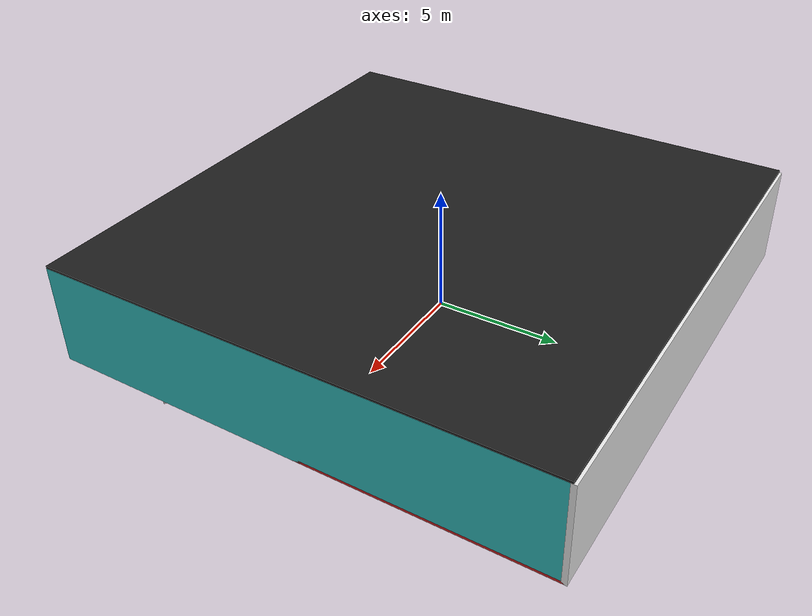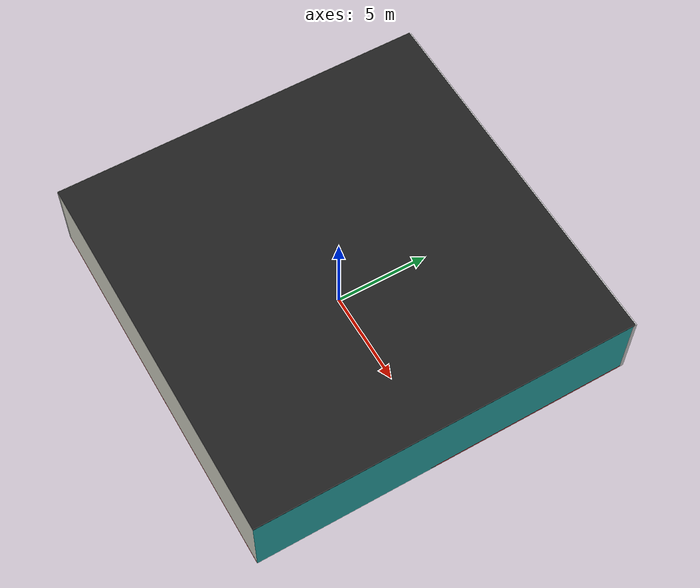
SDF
<sdf version="1.4">
 <world name="default">
  <physics type="ode">
   <max_step_size>0.001</max_step_size>
   <real_time_factor>1</real_time_factor>
   <real_time_update_rate>1000</real_time_update_rate>
   <gravity>0 0 -9.8</gravity>
  </physics>
  <scene><ambient>0.4 0.4 0.4 1</ambient><background>0.7 0.7 0.7 1</background><shadows>1</shadows></scene>
  <model name="Surrounding">
   <static>1</static>
   <link name="Ceiling">
    <collision name="Ceiling_Collision"><geometry><box><size>20 20 0.1</size></box></geometry></collision>
    <visual name="Ceiling_Visual">
     <geometry><box><size>20 20 0.1</size></box></geometry>
     <material>
      <script><uri>file://media/materials/scripts/gazebo.material</uri><name>Gazebo/FlatBlack</name></script>
     </material>
    </visual>
    <pose>0 0 4.05 0 0 0</pose>
   </link>
   <link name="Wall_South">
    <collision name="Wall_South_Collision">
     <geometry><box><size>20 0 4</size></box></geometry>
     <pose>0 0 2 0 -0 0</pose>
    </collision>
    <visual name="Wall_South_Visual">
     <pose>0 0 2 0 -0 0</pose>
     <geometry><box><size>20 0 4</size></box></geometry>
     <material>
      <script><uri>file://media/materials/scripts/gazebo.material</uri><name>Gazebo/PaintedWall</name></script>
     </material>
    </visual>
    <velocity_decay><linear>0</linear><angular>0</angular></velocity_decay>
    <pose>0 -10 0 0 -0 0</pose>
   </link>
   <link name="Wall_East">
    <collision name="Wall_21_Collision">
     <geometry><box><size>20 0 4</size></box></geometry>
     <pose>0 0 2 0 -0 0</pose>
    </collision>
    <visual name="Wall_21_Visual">
     <pose>0 0 2 0 -0 0</pose>
     <geometry><box><size>20 0 4</size></box></geometry>
     <material>
      <script><uri>file://media/materials/scripts/gazebo.material</uri><name>Gazebo/TurquoiseGlow</name></script>
     </material>
    </visual>
    <velocity_decay><linear>0</linear><angular>0</angular></velocity_decay>
    <pose>10 0 0 0 -0 1.5708</pose>
   </link>
   <link name="Wall_North">
    <collision name="Wall_22_Collision">
     <geometry><box><size>20 0.2 4</size></box></geometry>
     <pose>0 0 2 0 -0 0</pose>
    </collision>
    <visual name="Wall_22_Visual">
     <pose>0 0 2 0 -0 0</pose>
     <geometry><box><size>20 0.2 4</size></box></geometry>
     <material>
      <script><uri>file://media/materials/scripts/gazebo.material</uri><name>Gazebo/WhiteGlow</name></script>
     </material>
    </visual>
    <velocity_decay><linear>0</linear><angular>0</angular></velocity_decay>
    <pose>0 10 0 0 -0 0</pose>
   </link>
   <link name="Wall_West">
    <collision name="Wall_23_Collision">
     <geometry><box><size>20 0.2 4</size></box></geometry>
     <pose>0 0 2 0 -0 0</pose>
    </collision>
    <visual name="Wall_23_Visual">
     <pose>0 0 2 0 -0 0</pose>
     <geometry><box><size>20 0.2 4</size></box></geometry>
     <material>
      <script><uri>file://media/materials/scripts/gazebo.material</uri><name>Gazebo/LightOn</name></script>
     </material>
    </visual>
    <velocity_decay><linear>0</linear><angular>0</angular></velocity_decay>
    <pose>-10 0 0 0 0 -1.5708</pose>
   </link>
   <link name="Ground_link">
    <collision name="collision">
     <pose>0 0 .05 0 -0 0</pose>
     <geometry><box><size>20 20 0.1</size></box></geometry>
    </collision>
    <visual name="visual">
     <pose>0 0 .05 0 -0 0</pose>
     <geometry><box><size>20 20 0.1</size></box></geometry>
     <material>
      <script><uri>file://media/materials/scripts/gazebo.material</uri><name>Gazebo/Red</name></script>
     </material>
    </visual>
   </link>
   <static>1</static>
  </model>
  <spherical_coordinates>
   <surface_model>EARTH_WGS84</surface_model>
   <latitude_deg>0</latitude_deg>
   <longitude_deg>0</longitude_deg>
   <elevation>0</elevation>
   <heading_deg>0</heading_deg>
  </spherical_coordinates>
  <light name="lightball_0" type="diffuse">
   <diffuse>0.8 0.8 0.8 1</diffuse>
   <specular>0.2 0.2 0.2 1</specular>
   <attenuation>
    <range>100</range>
    <constant>0.7</constant>
    <linear>0.01</linear>
    <quadratic>0.001</quadratic>
   </attenuation>
   <direction>-0.5 0.1 -0.9</direction>
   <pose>-0.470560594656 -8.23417364396 1.2881475238 0 0 0</pose>
  </light>
  <light name="lightball_1" type="diffuse">
   <diffuse>0.8 0.8 0.8 1</diffuse>
   <specular>0.2 0.2 0.2 1</specular>
   <attenuation>
    <range>100</range>
    <constant>0.7</constant>
    <linear>0.01</linear>
    <quadratic>0.001</quadratic>
   </attenuation>
   <direction>-0.5 0.1 -0.9</direction>
   <pose>4.28061027864 8.27129353538 1.85929899964 0 0 0</pose>
  </light>
  <light name="lightball_2" type="diffuse">
   <diffuse>0.8 0.8 0.8 1</diffuse>
   <specular>0.2 0.2 0.2 1</specular>
   <attenuation>
    <range>100</range>
    <constant>0.7</constant>
    <linear>0.01</linear>
    <quadratic>0.001</quadratic>
   </attenuation>
   <direction>-0.5 0.1 -0.9</direction>
   <pose>3.41340933252 3.92823632949 3.49987779686 0 0 0</pose>
  </light>
  <light name="lightball_3" type="diffuse">
   <diffuse>0.8 0.8 0.8 1</diffuse>
   <specular>0.2 0.2 0.2 1</specular>
   <attenuation>
    <range>100</range>
    <constant>0.7</constant>
    <linear>0.01</linear>
    <quadratic>0.001</quadratic>
   </attenuation>
   <direction>-0.5 0.1 -0.9</direction>
   <pose>5.71945347714 4.38241202449 3.0325990026 0 0 0</pose>
  </light>
  <light name="lightball_4" type="diffuse">
   <diffuse>0.8 0.8 0.8 1</diffuse>
   <specular>0.2 0.2 0.2 1</specular>
   <attenuation>
    <range>100</range>
    <constant>0.7</constant>
    <linear>0.01</linear>
    <quadratic>0.001</quadratic>
   </attenuation>
   <direction>-0.5 0.1 -0.9</direction>
   <pose>7.97867934359 2.51425518729 3.72711269782 0 0 0</pose>
  </light>
  <light name="lightball_5" type="diffuse">
   <diffuse>0.8 0.8 0.8 1</diffuse>
   <specular>0.2 0.2 0.2 1</specular>
   <attenuation>
    <range>100</range>
    <constant>0.7</constant>
    <linear>0.01</linear>
    <quadratic>0.001</quadratic>
   </attenuation>
   <direction>-0.5 0.1 -0.9</direction>
   <pose>-0.479113508953 3.32364070415 2.53743161502 0 0 0</pose>
  </light>
  <light name="lightball_6" type="diffuse">
   <diffuse>0.8 0.8 0.8 1</diffuse>
   <specular>0.2 0.2 0.2 1</specular>
   <attenuation>
    <range>100</range>
    <constant>0.7</constant>
    <linear>0.01</linear>
    <quadratic>0.001</quadratic>
   </attenuation>
   <direction>-0.5 0.1 -0.9</direction>
   <pose>5.56055042599 2.25868751711 1.53194539792 0 0 0</pose>
  </light>
  <light name="lightball_7" type="diffuse">
   <diffuse>0.8 0.8 0.8 1</diffuse>
   <specular>0.2 0.2 0.2 1</specular>
   <attenuation>
    <range>100</range>
    <constant>0.7</constant>
    <linear>0.01</linear>
    <quadratic>0.001</quadratic>
   </attenuation>
   <direction>-0.5 0.1 -0.9</direction>
   <pose>-6.53210482826 1.61396032631 3.62355726803 0 0 0</pose>
  </light>
  <include>
   <uri>model://robocup_3Dsim_goal</uri>
   <pose>-1.08005615314 1.55324593389 0 0 0 0.594024115209</pose>
  </include>
  <include><uri>model://table</uri><pose>5.13346100312 4.99293903794 0 0 0 2.94214866421</pose></include>
  <include>
   <uri>model://textured_shapes</uri>
   <pose>7.83372581975 -4.83074152343 0 0 0 0.890827894135</pose>
  </include>
  <include>
   <uri>model://construction_cone</uri>
   <pose>8.36756852768 -1.37045311113 0 0 0 2.99252360113</pose>
  </include>
 </world>
</sdf>

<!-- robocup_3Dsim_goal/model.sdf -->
<sdf version="1.5">
  <model name="robocup_3d_goal">
    <static>true</static>
    <link name="left_post">
      <pose>0 1.05 0.45 0 0 0</pose>
      <collision name="collision">
        <geometry>
          <cylinder>
            <radius>0.05</radius>
            <length>0.9</length>
          </cylinder>
        </geometry>
      </collision>
      <visual name="visual">
        <geometry>
          <cylinder>
            <radius>0.05</radius>
            <length>0.9</length>
          </cylinder>
        </geometry>
        <material>
          <script>
            <uri>file://media/materials/scripts/gazebo.material</uri>
            <name>Gazebo/ZincYellow</name>
          </script>
        </material>
      </visual>
    </link>
    <link name="left_support_horiz_lower">
      <pose>0.30 1.05 0.01 0 0 0</pose>
      <collision name="collision">
        <geometry>
          <box>
            <size>0.50 0.02 0.02</size>
          </box>
        </geometry>
      </collision>
      <visual name="visual">
        <geometry>
          <box>
            <size>0.50 0.02 0.02</size>
          </box>
        </geometry>
        <material>
          <script>
            <uri>file://media/materials/scripts/gazebo.material</uri>
            <name>Gazebo/White</name>
          </script>
        </material>
      </visual>
    </link>
    <link name="left_support_horiz_upper">
      <pose>0.30 1.05 0.79 0 0 0</pose>
      <collision name="collision">
        <geometry>
          <box>
            <size>0.50 0.02 0.02</size>
          </box>
        </geometry>
      </collision>
      <visual name="visual">
        <geometry>
          <box>
            <size>0.50 0.02 0.02</size>
          </box>
        </geometry>
        <material>
          <script>
            <uri>file://media/materials/scripts/gazebo.material</uri>
            <name>Gazebo/White</name>
          </script>
        </material>
      </visual>
    </link>
    <link name="left_support_vertical">
      <pose>0.56 1.05 0.4 0 1.5708 0</pose>
      <collision name="collision">
        <geometry>
          <box>
            <size>0.80 0.02 0.02</size>
          </box>
        </geometry>
      </collision>
      <visual name="visual">
        <geometry>
          <box>
            <size>0.80 0.02 0.02</size>
          </box>
        </geometry>
        <material>
          <script>
            <uri>file://media/materials/scripts/gazebo.material</uri>
            <name>Gazebo/White</name>
          </script>
        </material>
      </visual>
    </link>
    <link name="right_support_horiz_lower">
      <pose>0.30 -1.05 0.01 0 0 0</pose>
      <collision name="collision">
        <geometry>
          <box>
            <size>0.50 0.02 0.02</size>
          </box>
        </geometry>
      </collision>
      <visual name="visual">
        <geometry>
          <box>
            <size>0.50 0.02 0.02</size>
          </box>
        </geometry>
        <material>
          <script>
            <uri>file://media/materials/scripts/gazebo.material</uri>
            <name>Gazebo/White</name>
          </script>
        </material>
      </visual>
    </link>
    <link name="right_support_horiz_upper">
      <pose>0.30 -1.05 0.79 0 0 0</pose>
      <collision name="collision">
        <geometry>
          <box>
            <size>0.50 0.02 0.02</size>
          </box>
        </geometry>
      </collision>
      <visual name="visual">
        <geometry>
          <box>
            <size>0.50 0.02 0.02</size>
          </box>
        </geometry>
        <material>
          <script>
            <uri>file://media/materials/scripts/gazebo.material</uri>
            <name>Gazebo/White</name>
          </script>
        </material>
      </visual>
    </link>
    <link name="right_support_vertical">
      <pose>0.56 -1.05 0.4 0 1.5708 0</pose>
      <collision name="collision">
        <geometry>
          <box>
            <size>0.80 0.02 0.02</size>
          </box>
        </geometry>
      </collision>
      <visual name="visual">
        <geometry>
          <box>
            <size>0.80 0.02 0.02</size>
          </box>
        </geometry>
        <material>
          <script>
            <uri>file://media/materials/scripts/gazebo.material</uri>
            <name>Gazebo/White</name>
          </script>
        </material>
      </visual>
    </link>
    <link name="center_support_horiz_lower">
      <pose>0.56 0 0.01 0 1.5708 0</pose>
      <collision name="collision">
        <geometry>
          <box>
            <size>0.02 2.08 0.02</size>
          </box>
        </geometry>
      </collision>
      <visual name="visual">
        <geometry>
          <box>
            <size>0.02 2.08 0.02</size>
          </box>
        </geometry>
        <material>
          <script>
            <uri>file://media/materials/scripts/gazebo.material</uri>
            <name>Gazebo/White</name>
          </script>
        </material>
      </visual>
    </link>
    <link name="center_support_horiz_upper">
      <pose>0.56 0 0.79 0 1.5708 0</pose>
      <collision name="collision">
        <geometry>
          <box>
            <size>0.02 2.08 0.02</size>
          </box>
        </geometry>
      </collision>
      <visual name="visual">
        <geometry>
          <box>
            <size>0.02 2.08 0.02</size>
          </box>
        </geometry>
        <material>
          <script>
            <uri>file://media/materials/scripts/gazebo.material</uri>
            <name>Gazebo/White</name>
          </script>
        </material>
      </visual>
    </link>
    <link name="right_post">
      <pose>0 -1.05 0.45 0 0 0</pose>
      <collision name="collision">
        <geometry>
          <cylinder>
            <radius>0.05</radius>
            <length>0.9</length>
          </cylinder>
        </geometry>
      </collision>
      <visual name="visual">
        <geometry>
          <cylinder>
            <radius>0.05</radius>
            <length>0.9</length>
          </cylinder>
        </geometry>
        <material>
          <script>
            <uri>file://media/materials/scripts/gazebo.material</uri>
            <name>Gazebo/ZincYellow</name>
          </script>
        </material>
      </visual>
    </link>
    <link name="crossbar">
      <pose>0 0 0.85 1.57 1.57 0</pose>
      <collision name="collision">
        <geometry>
          <cylinder>
            <radius>0.05</radius>
            <length>2.0</length>
          </cylinder>
        </geometry>
      </collision>
      <visual name="visual">
        <geometry>
          <cylinder>
            <radius>0.05</radius>
            <length>2.0</length>
          </cylinder>
        </geometry>
        <material>
          <script>
            <uri>file://media/materials/scripts/gazebo.material</uri>
            <name>Gazebo/ZincYellow</name>
          </script>
        </material>
      </visual>
    </link>
    <link name="center_net">
      <pose>0.56 0 0.40 0 0 0</pose>
      <collision name="collision">
        <geometry>
          <box>
            <size>0.01 2.1 0.80</size>
          </box>
        </geometry>
      </collision>
      <visual name="visual">
        <geometry>
          <box>
            <size>0.01 2.1 0.80</size>
          </box>
        </geometry>
        <material>
          <script>
            <uri>model://../model_source/models/robocup09_spl_field/materials/scripts/</uri>
            <uri>model://../model_source/models/robocup09_spl_field/materials/textures/</uri>
            <name>RoboCup/Net</name>
          </script>
        </material>
      </visual>
    </link>
    <link name="left_net">
      <pose>0.30 1.05 0.40 0 0 0</pose>
      <collision name="collision">
        <geometry>
          <box>
            <size>0.50 0.01 0.76</size>
          </box>
        </geometry>
      </collision>
      <visual name="visual">
        <geometry>
          <box>
            <size>0.50 0.01 0.76</size>
          </box>
        </geometry>
        <material>
          <script>
            <uri>model://../model_source/models/robocup09_spl_field/materials/scripts/</uri>
            <uri>model://../model_source/models/robocup09_spl_field/materials/textures/</uri>
            <name>RoboCup/Net</name>
          </script>
        </material>
      </visual>
    </link>
    <link name="right_net">
      <pose>0.30 -1.05 0.40 0 0 0</pose>
      <collision name="collision">
        <geometry>
          <box>
            <size>0.50 0.01 0.76</size>
          </box>
        </geometry>
      </collision>
      <visual name="visual">
        <geometry>
          <box>
            <size>0.50 0.01 0.76</size>
          </box>
        </geometry>
        <material>
          <script>
            <uri>model://../model_source/models/robocup09_spl_field/materials/scripts/</uri>
            <uri>model://../model_source/models/robocup09_spl_field/materials/textures/</uri>
            <name>RoboCup/Net</name>
          </script>
        </material>
      </visual>
    </link>
  </model>
</sdf>

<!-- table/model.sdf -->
<sdf version="1.5">
  <model name="table">
    <static>true</static>
    <link name="link">
      <collision name="surface">
        <pose>0 0 1.0 0 0 0</pose>
        <geometry>
          <box>
            <size>1.5 0.8 0.03</size>
          </box>
        </geometry>
        <surface>
          <friction>
            <ode>
              <mu>0.6</mu>
              <mu2>0.6</mu2>
            </ode>
          </friction>
        </surface>
      </collision>
      <visual name="visual1">
        <pose>0 0 1.0 0 0 0</pose>
        <geometry>
          <box>
            <size>1.5 0.8 0.03</size>
          </box>
        </geometry>
        <material>
          <script>
            <uri>model://media/materials/scripts/gazebo.material</uri>
            <name>Gazebo/Wood</name>
          </script>
        </material>
      </visual>
      <collision name="front_left_leg">
        <pose>0.68 0.38 0.5 0 0 0</pose>
        <geometry>
          <cylinder>
            <radius>0.02</radius>
            <length>1.0</length>
          </cylinder>
        </geometry>
      </collision>
      <visual name="front_left_leg">
        <pose>0.68 0.38 0.5 0 0 0</pose>
        <geometry>
          <cylinder>
            <radius>0.02</radius>
            <length>1.0</length>
          </cylinder>
        </geometry>
        <material>
          <script>
            <uri>model://media/materials/scripts/gazebo.material</uri>
            <name>Gazebo/Grey</name>
          </script>
        </material>
      </visual>
      <collision name="front_right_leg">
        <pose>0.68 -0.38 0.5 0 0 0</pose>
        <geometry>
          <cylinder>
            <radius>0.02</radius>
            <length>1.0</length>
          </cylinder>
        </geometry>
      </collision>
      <visual name="front_right_leg">
        <pose>0.68 -0.38 0.5 0 0 0</pose>
        <geometry>
          <cylinder>
            <radius>0.02</radius>
            <length>1.0</length>
          </cylinder>
        </geometry>
        <material>
          <script>
            <uri>model://media/materials/scripts/gazebo.material</uri>
            <name>Gazebo/Grey</name>
          </script>
        </material>
      </visual>
      <collision name="back_right_leg">
        <pose>-0.68 -0.38 0.5 0 0 0</pose>
        <geometry>
          <cylinder>
            <radius>0.02</radius>
            <length>1.0</length>
          </cylinder>
        </geometry>
      </collision>
      <visual name="back_right_leg">
        <pose>-0.68 -0.38 0.5 0 0 0</pose>
        <geometry>
          <cylinder>
            <radius>0.02</radius>
            <length>1.0</length>
          </cylinder>
        </geometry>
        <material>
          <script>
            <uri>model://media/materials/scripts/gazebo.material</uri>
            <name>Gazebo/Grey</name>
          </script>
        </material>
      </visual>
      <collision name="back_left_leg">
        <pose>-0.68 0.38 0.5 0 0 0</pose>
        <geometry>
          <cylinder>
            <radius>0.02</radius>
            <length>1.0</length>
          </cylinder>
        </geometry>
      </collision>
      <visual name="back_left_leg">
        <pose>-0.68 0.38 0.5 0 0 0</pose>
        <geometry>
          <cylinder>
            <radius>0.02</radius>
            <length>1.0</length>
          </cylinder>
        </geometry>
        <material>
          <script>
            <uri>model://media/materials/scripts/gazebo.material</uri>
            <name>Gazebo/Grey</name>
          </script>
        </material>
      </visual>
    </link>
  </model>
</sdf>

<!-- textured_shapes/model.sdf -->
<sdf version="1.6">
  <model name="textured_shapes">
    <pose>0 0 0.5 0 0 0</pose>
    <link name="box">
      <pose>0 -1.5 0 0 0 0</pose>
      <collision name="collision">
        <geometry>
          <box>
            <size>1 1 1</size>
          </box>
        </geometry>
      </collision>
      <visual name="visual">
        <geometry>
          <box>
            <size>1 1 1</size>
          </box>
        </geometry>
        <material>
          <script>
            <uri>model://../model_source/models/textured_shapes/materials/scripts</uri>
            <uri>model://../model_source/models/textured_shapes/materials/textures</uri>
            <name>TexturedShape/Squares</name>
          </script>
        </material>
      </visual>
    </link>
    <link name="sphere">
      <collision name="collision">
        <geometry>
          <sphere>
            <radius>0.5</radius>
          </sphere>
        </geometry>
      </collision>
      <visual name="visual">
        <geometry>
          <sphere>
            <radius>0.5</radius>
          </sphere>
        </geometry>
        <material>
          <script>
            <uri>model://../model_source/models/textured_shapes/materials/scripts</uri>
            <uri>model://../model_source/models/textured_shapes/materials/textures</uri>
            <name>TexturedShape/Squares</name>
          </script>
        </material>
      </visual>
    </link>
    <link name="cylinder">
      <pose>0 1.5 0 0 0 0</pose>
      <collision name="collision">
        <geometry>
          <cylinder>
            <radius>0.5</radius>
            <length>1</length>
          </cylinder>
        </geometry>
      </collision>
      <visual name="visual">
        <geometry>
          <cylinder>
            <radius>0.5</radius>
            <length>1</length>
          </cylinder>
        </geometry>
        <material>
          <script>
            <uri>model://../model_source/models/textured_shapes/materials/scripts</uri>
            <uri>model://../model_source/models/textured_shapes/materials/textures</uri>
            <name>TexturedShape/Squares</name>
          </script>
        </material>
      </visual>
    </link>
  </model>
</sdf>

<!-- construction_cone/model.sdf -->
<sdf version="1.5">
  <model name="Construction Cone">
    <link name="link">
      <collision name="collision">
        <geometry>
          <mesh>
            <scale>10 10 10</scale>
            <uri>file://isr-testbed/construction_cone/meshes/construction_cone.dae</uri>
          </mesh>
        </geometry>
      </collision>
      <visual name="visual">
        <geometry>
          <mesh>
            <scale>10 10 10</scale>
            <uri>file://isr-testbed/construction_cone/meshes/construction_cone.dae</uri>
          </mesh>
        </geometry>
      </visual>
    </link>
  </model>
</sdf>
